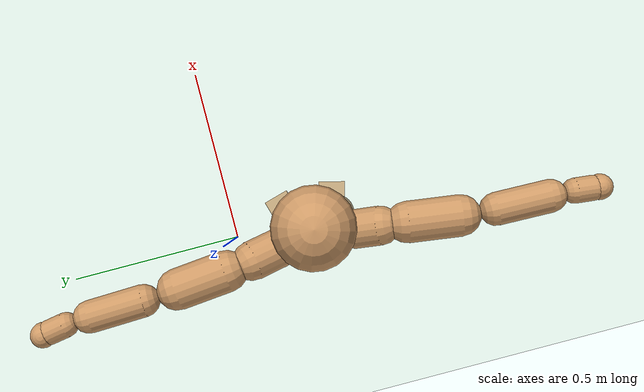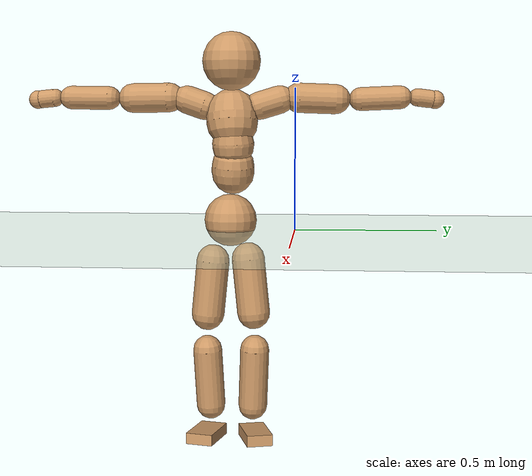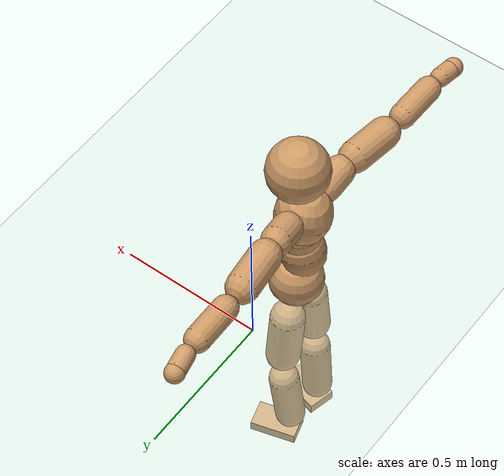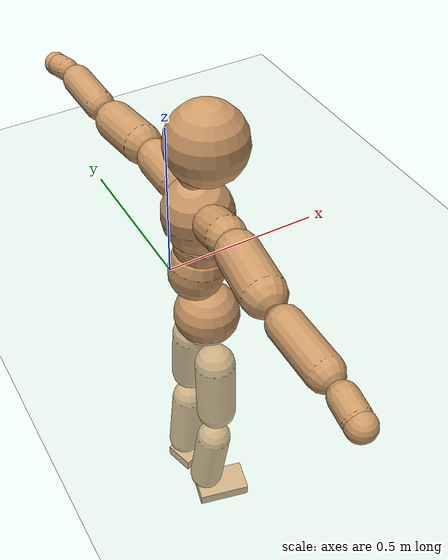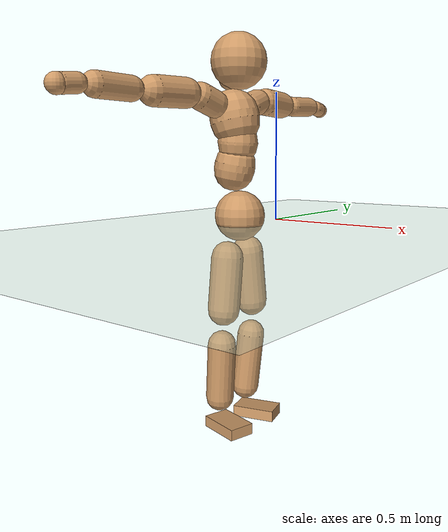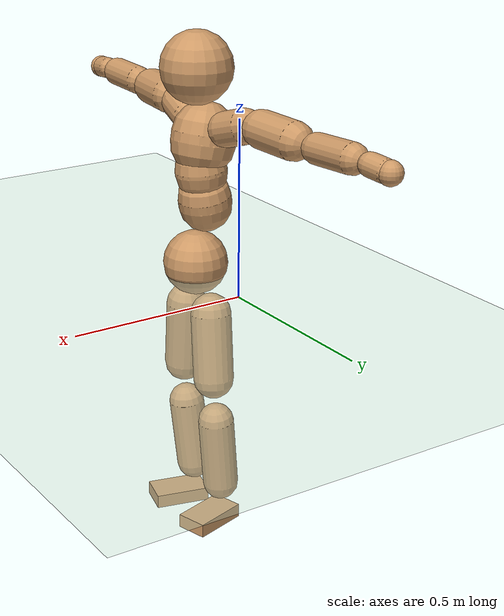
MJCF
<mujoco model="humanoid">
  <compiler coordinate="local"/>
  <default>
    <joint damping="0.0" armature="0.01" stiffness="0.0" limited="true"/>
    <geom conaffinity="1" condim="3" contype="7" margin="0.001" rgba="0.8 0.6 .4 1"/>
  </default>
  <asset>
    <texture type="skybox" builtin="gradient" rgb1=".4 .5 .6" rgb2="0 0 0" width="100" height="100"/>
    <texture builtin="flat" height="1278" mark="cross" markrgb="1 1 1" name="texgeom" random="0.01" rgb1="0.8 0.6 0.4" rgb2="0.8 0.6 0.4" type="cube" width="127"/>
    <texture builtin="checker" height="100" name="texplane" rgb1="0 0 0" rgb2="0.8 0.8 0.8" type="2d" width="100"/>
    <material name="MatPlane" reflectance="0.5" shininess="1" specular="1" texrepeat="60 60" texture="texplane"/>
    <material name="geom" texture="texgeom" texuniform="true"/>
  </asset>
  <worldbody>
    <light cutoff="100" diffuse="1 1 1" dir="-0 0 -1.3" directional="true" exponent="1" pos="0 0 1.3" specular=".1 .1 .1"/>
    <geom conaffinity="1" condim="3" name="floor" pos="0 0 0" rgba="0.8 0.9 0.8 1" size="100 100 .2" type="plane" material="MatPlane"/>
    <body name="Pelvis" pos="-0.0031 -0.2293 0.0331">
      <freejoint name="Pelvis"/>
      <geom type="sphere" contype="1" conaffinity="1" density="500" size="0.0932" pos="0.0000 0.0000 0.0000" name="Pelvis"/>
      <body name="L_Hip" pos="-0.013 0.0557 -0.0758">
        <joint name="L_Hip_x" type="hinge" pos="0 0 0" axis="1 0 0" stiffness="800" damping="80" armature="0.02" range="-180.0000 180.0000"/>
        <joint name="L_Hip_y" type="hinge" pos="0 0 0" axis="0 1 0" stiffness="800" damping="80" armature="0.02" range="-180.0000 180.0000"/>
        <joint name="L_Hip_z" type="hinge" pos="0 0 0" axis="0 0 1" stiffness="800" damping="80" armature="0.02" range="-180.0000 180.0000"/>
        <geom type="capsule" contype="1" conaffinity="1" density="500" fromto="0.0013 0.0066 -0.0654 0.0053 0.0265 -0.2614" size="0.059" name="L_Hip"/>
        <body name="L_Knee" pos="0.0066 0.0331 -0.3268">
          <joint name="L_Knee_x" type="hinge" pos="0 0 0" axis="1 0 0" stiffness="800" damping="80" armature="0.02" range="-180.0000 180.0000"/>
          <joint name="L_Knee_y" type="hinge" pos="0 0 0" axis="0 1 0" stiffness="800" damping="80" armature="0.02" range="-180.0000 180.0000"/>
          <joint name="L_Knee_z" type="hinge" pos="0 0 0" axis="0 0 1" stiffness="800" damping="80" armature="0.02" range="-180.0000 180.0000"/>
          <geom type="capsule" contype="1" conaffinity="1" density="500" fromto="-0.0071 -0.0028 -0.0714 -0.0284 -0.0111 -0.2854" size="0.0521" name="L_Knee"/>
          <body name="L_Ankle" pos="-0.0355 -0.0139 -0.3568">
            <joint name="L_Ankle_x" type="hinge" pos="0 0 0" axis="1 0 0" stiffness="800" damping="80" armature="0.02" range="-180.0000 180.0000"/>
            <joint name="L_Ankle_y" type="hinge" pos="0 0 0" axis="0 1 0" stiffness="800" damping="80" armature="0.02" range="-180.0000 180.0000"/>
            <joint name="L_Ankle_z" type="hinge" pos="0 0 0" axis="0 0 1" stiffness="800" damping="80" armature="0.02" range="-180.0000 180.0000"/>
            <geom type="box" contype="1" conaffinity="1" density="500" pos="0.0551 0.0156 -0.0256" size="0.0811 0.0465 0.0204" quat="0.9906 0.0000 0.0000 0.1371" name="L_Ankle"/>
            <body name="L_Toe" pos="0.1102 0.0311 -0.0512">
              <joint name="L_Toe_x" type="hinge" pos="0 0 0" axis="1 0 0" stiffness="500" damping="50" armature="0.02" range="-180.0000 180.0000"/>
              <joint name="L_Toe_y" type="hinge" pos="0 0 0" axis="0 1 0" stiffness="500" damping="50" armature="0.02" range="-180.0000 180.0000"/>
              <joint name="L_Toe_z" type="hinge" pos="0 0 0" axis="0 0 1" stiffness="500" damping="50" armature="0.02" range="-180.0000 180.0000"/>
              <geom type="box" contype="1" conaffinity="1" density="500" pos="0.0000 0.0000 0.0247" size="0.001 0.0023 0.001" quat="0.9897 0.0000 0.0000 0.1430" name="L_Toe"/>
            </body>
          </body>
        </body>
      </body>
      <body name="R_Hip" pos="-0.0072 -0.0581 -0.0842">
        <joint name="R_Hip_x" type="hinge" pos="0 0 0" axis="1 0 0" stiffness="800" damping="80" armature="0.02" range="-180.0000 180.0000"/>
        <joint name="R_Hip_y" type="hinge" pos="0 0 0" axis="0 1 0" stiffness="800" damping="80" armature="0.02" range="-180.0000 180.0000"/>
        <joint name="R_Hip_z" type="hinge" pos="0 0 0" axis="0 0 1" stiffness="800" damping="80" armature="0.02" range="-180.0000 180.0000"/>
        <geom type="capsule" contype="1" conaffinity="1" density="500" fromto="-0.0009 -0.0064 -0.0649 -0.0035 -0.0255 -0.2598" size="0.0587" name="R_Hip"/>
        <body name="R_Knee" pos="-0.0043 -0.0318 -0.3247">
          <joint name="R_Knee_x" type="hinge" pos="0 0 0" axis="1 0 0" stiffness="800" damping="80" armature="0.02" range="-180.0000 180.0000"/>
          <joint name="R_Knee_y" type="hinge" pos="0 0 0" axis="0 1 0" stiffness="800" damping="80" armature="0.02" range="-180.0000 180.0000"/>
          <joint name="R_Knee_z" type="hinge" pos="0 0 0" axis="0 0 1" stiffness="800" damping="80" armature="0.02" range="-180.0000 180.0000"/>
          <geom type="capsule" contype="1" conaffinity="1" density="500" fromto="-0.0066 0.0033 -0.0699 -0.0262 0.0132 -0.2797" size="0.0524" name="R_Knee"/>
          <body name="R_Ankle" pos="-0.0328 0.0165 -0.3496">
            <joint name="R_Ankle_x" type="hinge" pos="0 0 0" axis="1 0 0" stiffness="800" damping="80" armature="0.02" range="-180.0000 180.0000"/>
            <joint name="R_Ankle_y" type="hinge" pos="0 0 0" axis="0 1 0" stiffness="800" damping="80" armature="0.02" range="-180.0000 180.0000"/>
            <joint name="R_Ankle_z" type="hinge" pos="0 0 0" axis="0 0 1" stiffness="800" damping="80" armature="0.02" range="-180.0000 180.0000"/>
            <geom type="box" contype="1" conaffinity="1" density="500" pos="0.0583 -0.0143 -0.0262" size="0.0813 0.0486 0.02" quat="0.9928 0.0000 0.0000 -0.1199" name="R_Ankle"/>
            <body name="R_Toe" pos="0.1167 -0.0286 -0.0524">
              <joint name="R_Toe_x" type="hinge" pos="0 0 0" axis="1 0 0" stiffness="500" damping="50" armature="0.02" range="-180.0000 180.0000"/>
              <joint name="R_Toe_y" type="hinge" pos="0 0 0" axis="0 1 0" stiffness="500" damping="50" armature="0.02" range="-180.0000 180.0000"/>
              <joint name="R_Toe_z" type="hinge" pos="0 0 0" axis="0 0 1" stiffness="500" damping="50" armature="0.02" range="-180.0000 180.0000"/>
              <geom type="box" contype="1" conaffinity="1" density="500" pos="0.0000 0.0000 0.0268" size="0.001 0.0024 0.001" quat="0.9939 0.0000 0.0000 -0.1101" name="R_Toe"/>
            </body>
          </body>
        </body>
      </body>
      <body name="Torso" pos="-0.0397 0.004 0.1163">
        <joint name="Torso_x" type="hinge" pos="0 0 0" axis="1 0 0" stiffness="1000" damping="100" armature="0.02" range="-180.0000 180.0000"/>
        <joint name="Torso_y" type="hinge" pos="0 0 0" axis="0 1 0" stiffness="1000" damping="100" armature="0.02" range="-180.0000 180.0000"/>
        <joint name="Torso_z" type="hinge" pos="0 0 0" axis="0 0 1" stiffness="1000" damping="100" armature="0.02" range="-180.0000 180.0000"/>
        <geom type="capsule" contype="1" conaffinity="1" density="500" fromto="0.0134 0.0029 0.0761 0.0089 0.0019 0.0507" size="0.075981" name="Torso"/>
        <body name="Spine" pos="0.0224 0.0048 0.1268">
          <joint name="Spine_x" type="hinge" pos="0 0 0" axis="1 0 0" stiffness="1000" damping="100" armature="0.02" range="-180.0000 180.0000"/>
          <joint name="Spine_y" type="hinge" pos="0 0 0" axis="0 1 0" stiffness="1000" damping="100" armature="0.02" range="-180.0000 180.0000"/>
          <joint name="Spine_z" type="hinge" pos="0 0 0" axis="0 0 1" stiffness="1000" damping="100" armature="0.02" range="-180.0000 180.0000"/>
          <geom type="capsule" contype="1" conaffinity="1" density="500" fromto="0.0026 -0.0009 0.0306 0.0017 -0.0006 0.0204" size="0.0744" name="Spine"/>
          <body name="Chest" pos="0.0043 -0.0015 0.0511">
            <joint name="Chest_x" type="hinge" pos="0 0 0" axis="1 0 0" stiffness="1000" damping="100" armature="0.02" range="-180.0000 180.0000"/>
            <joint name="Chest_y" type="hinge" pos="0 0 0" axis="0 1 0" stiffness="1000" damping="100" armature="0.02" range="-180.0000 180.0000"/>
            <joint name="Chest_z" type="hinge" pos="0 0 0" axis="0 0 1" stiffness="1000" damping="100" armature="0.02" range="-180.0000 180.0000"/>
            <geom type="capsule" contype="1" conaffinity="1" density="500" fromto="-0.0164 -0.0050 0.0792 -0.0109 -0.0034 0.0528" size="0.09207" name="Chest"/>
            <body name="Neck" pos="-0.0377 -0.0136 0.1903">
              <joint name="Neck_x" type="hinge" pos="0 0 0" axis="1 0 0" stiffness="500" damping="50" armature="0.02" range="-180.0000 180.0000"/>
              <joint name="Neck_y" type="hinge" pos="0 0 0" axis="0 1 0" stiffness="500" damping="50" armature="0.02" range="-180.0000 180.0000"/>
              <joint name="Neck_z" type="hinge" pos="0 0 0" axis="0 0 1" stiffness="500" damping="50" armature="0.02" range="-180.0000 180.0000"/>
              <geom type="capsule" contype="1" conaffinity="1" density="500" fromto="0.0090 0.0019 0.0155 0.0361 0.0077 0.0619" size="0.041199" name="Neck"/>
              <body name="Head" pos="0.0451 0.0096 0.0773">
                <joint name="Head_x" type="hinge" pos="0 0 0" axis="1 0 0" stiffness="500" damping="50" armature="0.02" range="-180.0000 180.0000"/>
                <joint name="Head_y" type="hinge" pos="0 0 0" axis="0 1 0" stiffness="500" damping="50" armature="0.02" range="-180.0000 180.0000"/>
                <joint name="Head_z" type="hinge" pos="0 0 0" axis="0 0 1" stiffness="500" damping="50" armature="0.02" range="-180.0000 180.0000"/>
                <geom type="sphere" contype="1" conaffinity="1" density="500" size="0.1032" pos="0.0000 0.0000 0.0000" name="Head"/>
              </body>
            </body>
            <body name="L_Thorax" pos="-0.0198 0.0678 0.1033">
              <joint name="L_Thorax_x" type="hinge" pos="0 0 0" axis="1 0 0" stiffness="500" damping="50" armature="0.02" range="-180.0000 180.0000"/>
              <joint name="L_Thorax_y" type="hinge" pos="0 0 0" axis="0 1 0" stiffness="500" damping="50" armature="0.02" range="-180.0000 180.0000"/>
              <joint name="L_Thorax_z" type="hinge" pos="0 0 0" axis="0 0 1" stiffness="500" damping="50" armature="0.02" range="-180.0000 180.0000"/>
              <geom type="capsule" contype="1" conaffinity="1" density="500" fromto="-0.0044 0.0243 0.0075 -0.0175 0.0971 0.0298" size="0.0502" name="L_Thorax"/>
              <body name="L_Shoulder" pos="-0.0218 0.1213 0.0373">
                <joint name="L_Shoulder_x" type="hinge" pos="0 0 0" axis="1 0 0" stiffness="500" damping="50" armature="0.02" range="-720.0000 720.0000"/>
                <joint name="L_Shoulder_y" type="hinge" pos="0 0 0" axis="0 1 0" stiffness="500" damping="50" armature="0.02" range="-720.0000 720.0000"/>
                <joint name="L_Shoulder_z" type="hinge" pos="0 0 0" axis="0 0 1" stiffness="500" damping="50" armature="0.02" range="-720.0000 720.0000"/>
                <geom type="capsule" contype="1" conaffinity="1" density="500" fromto="-0.0043 0.0433 -0.0016 -0.0170 0.1731 -0.0064" size="0.0531" name="L_Shoulder"/>
                <body name="L_Elbow" pos="-0.0213 0.2163 -0.008">
                  <joint name="L_Elbow_x" type="hinge" pos="0 0 0" axis="1 0 0" stiffness="500" damping="50" armature="0.02" range="-720.0000 720.0000"/>
                  <joint name="L_Elbow_y" type="hinge" pos="0 0 0" axis="0 1 0" stiffness="500" damping="50" armature="0.02" range="-720.0000 720.0000"/>
                  <joint name="L_Elbow_z" type="hinge" pos="0 0 0" axis="0 0 1" stiffness="500" damping="50" armature="0.02" range="-720.0000 720.0000"/>
                  <geom type="capsule" contype="1" conaffinity="1" density="500" fromto="-0.0014 0.0463 0.0019 -0.0057 0.1852 0.0078" size="0.0415" name="L_Elbow"/>
                  <body name="L_Wrist" pos="-0.0071 0.2316 0.0097">
                    <joint name="L_Wrist_x" type="hinge" pos="0 0 0" axis="1 0 0" stiffness="300" damping="30" armature="0.02" range="-180.0000 180.0000"/>
                    <joint name="L_Wrist_y" type="hinge" pos="0 0 0" axis="0 1 0" stiffness="300" damping="30" armature="0.02" range="-180.0000 180.0000"/>
                    <joint name="L_Wrist_z" type="hinge" pos="0 0 0" axis="0 0 1" stiffness="300" damping="30" armature="0.02" range="-180.0000 180.0000"/>
                    <geom type="capsule" contype="1" conaffinity="1" density="500" fromto="-0.0028 0.0158 -0.0020 -0.0110 0.0632 -0.0078" size="0.0317" name="L_Wrist"/>
                    <body name="L_Hand" pos="-0.0138 0.079 -0.0098">
                      <joint name="L_Hand_x" type="hinge" pos="0 0 0" axis="1 0 0" stiffness="300" damping="30" armature="0.02" range="-180.0000 180.0000"/>
                      <joint name="L_Hand_y" type="hinge" pos="0 0 0" axis="0 1 0" stiffness="300" damping="30" armature="0.02" range="-180.0000 180.0000"/>
                      <joint name="L_Hand_z" type="hinge" pos="0 0 0" axis="0 0 1" stiffness="300" damping="30" armature="0.02" range="-180.0000 180.0000"/>
                      <geom type="sphere" contype="1" conaffinity="1" density="500" size="0.0326" pos="0.0000 0.0000 0.0000" name="L_Hand"/>
                    </body>
                  </body>
                </body>
              </body>
            </body>
            <body name="R_Thorax" pos="-0.0244 -0.0794 0.1025">
              <joint name="R_Thorax_x" type="hinge" pos="0 0 0" axis="1 0 0" stiffness="500" damping="50" armature="0.02" range="-180.0000 180.0000"/>
              <joint name="R_Thorax_y" type="hinge" pos="0 0 0" axis="0 1 0" stiffness="500" damping="50" armature="0.02" range="-180.0000 180.0000"/>
              <joint name="R_Thorax_z" type="hinge" pos="0 0 0" axis="0 0 1" stiffness="500" damping="50" armature="0.02" range="-180.0000 180.0000"/>
              <geom type="capsule" contype="1" conaffinity="1" density="500" fromto="-0.0023 -0.0219 0.0076 -0.0091 -0.0876 0.0303" size="0.0499" name="R_Thorax"/>
              <body name="R_Shoulder" pos="-0.0114 -0.1095 0.0379">
                <joint name="R_Shoulder_x" type="hinge" pos="0 0 0" axis="1 0 0" stiffness="500" damping="50" armature="0.02" range="-720.0000 720.0000"/>
                <joint name="R_Shoulder_y" type="hinge" pos="0 0 0" axis="0 1 0" stiffness="500" damping="50" armature="0.02" range="-720.0000 720.0000"/>
                <joint name="R_Shoulder_z" type="hinge" pos="0 0 0" axis="0 0 1" stiffness="500" damping="50" armature="0.02" range="-720.0000 720.0000"/>
                <geom type="capsule" contype="1" conaffinity="1" density="500" fromto="-0.0060 -0.0442 -0.0006 -0.0240 -0.1770 -0.0023" size="0.053" name="R_Shoulder"/>
                <body name="R_Elbow" pos="-0.03 -0.2212 -0.0028">
                  <joint name="R_Elbow_x" type="hinge" pos="0 0 0" axis="1 0 0" stiffness="500" damping="50" armature="0.02" range="-720.0000 720.0000"/>
                  <joint name="R_Elbow_y" type="hinge" pos="0 0 0" axis="0 1 0" stiffness="500" damping="50" armature="0.02" range="-720.0000 720.0000"/>
                  <joint name="R_Elbow_z" type="hinge" pos="0 0 0" axis="0 0 1" stiffness="500" damping="50" armature="0.02" range="-720.0000 720.0000"/>
                  <geom type="capsule" contype="1" conaffinity="1" density="500" fromto="-0.0010 -0.0463 0.0006 -0.0040 -0.1851 0.0024" size="0.0421" name="R_Elbow"/>
                  <body name="R_Wrist" pos="-0.0051 -0.2314 0.0029">
                    <joint name="R_Wrist_x" type="hinge" pos="0 0 0" axis="1 0 0" stiffness="300" damping="30" armature="0.02" range="-180.0000 180.0000"/>
                    <joint name="R_Wrist_y" type="hinge" pos="0 0 0" axis="0 1 0" stiffness="300" damping="30" armature="0.02" range="-180.0000 180.0000"/>
                    <joint name="R_Wrist_z" type="hinge" pos="0 0 0" axis="0 0 1" stiffness="300" damping="30" armature="0.02" range="-180.0000 180.0000"/>
                    <geom type="capsule" contype="1" conaffinity="1" density="500" fromto="-0.0018 -0.0162 -0.0016 -0.0071 -0.0646 -0.0064" size="0.0324" name="R_Wrist"/>
                    <body name="R_Hand" pos="-0.0089 -0.0808 -0.008">
                      <joint name="R_Hand_x" type="hinge" pos="0 0 0" axis="1 0 0" stiffness="300" damping="30" armature="0.02" range="-180.0000 180.0000"/>
                      <joint name="R_Hand_y" type="hinge" pos="0 0 0" axis="0 1 0" stiffness="300" damping="30" armature="0.02" range="-180.0000 180.0000"/>
                      <joint name="R_Hand_z" type="hinge" pos="0 0 0" axis="0 0 1" stiffness="300" damping="30" armature="0.02" range="-180.0000 180.0000"/>
                      <geom type="sphere" contype="1" conaffinity="1" density="500" size="0.0331" pos="0.0000 0.0000 0.0000" name="R_Hand"/>
                    </body>
                  </body>
                </body>
              </body>
            </body>
          </body>
        </body>
      </body>
    </body>
  </worldbody>
  <actuator>
    <motor name="L_Hip_x" joint="L_Hip_x" gear="500"/>
    <motor name="L_Hip_y" joint="L_Hip_y" gear="500"/>
    <motor name="L_Hip_z" joint="L_Hip_z" gear="500"/>
    <motor name="L_Knee_x" joint="L_Knee_x" gear="500"/>
    <motor name="L_Knee_y" joint="L_Knee_y" gear="500"/>
    <motor name="L_Knee_z" joint="L_Knee_z" gear="500"/>
    <motor name="L_Ankle_x" joint="L_Ankle_x" gear="500"/>
    <motor name="L_Ankle_y" joint="L_Ankle_y" gear="500"/>
    <motor name="L_Ankle_z" joint="L_Ankle_z" gear="500"/>
    <motor name="L_Toe_x" joint="L_Toe_x" gear="500"/>
    <motor name="L_Toe_y" joint="L_Toe_y" gear="500"/>
    <motor name="L_Toe_z" joint="L_Toe_z" gear="500"/>
    <motor name="R_Hip_x" joint="R_Hip_x" gear="500"/>
    <motor name="R_Hip_y" joint="R_Hip_y" gear="500"/>
    <motor name="R_Hip_z" joint="R_Hip_z" gear="500"/>
    <motor name="R_Knee_x" joint="R_Knee_x" gear="500"/>
    <motor name="R_Knee_y" joint="R_Knee_y" gear="500"/>
    <motor name="R_Knee_z" joint="R_Knee_z" gear="500"/>
    <motor name="R_Ankle_x" joint="R_Ankle_x" gear="500"/>
    <motor name="R_Ankle_y" joint="R_Ankle_y" gear="500"/>
    <motor name="R_Ankle_z" joint="R_Ankle_z" gear="500"/>
    <motor name="R_Toe_x" joint="R_Toe_x" gear="500"/>
    <motor name="R_Toe_y" joint="R_Toe_y" gear="500"/>
    <motor name="R_Toe_z" joint="R_Toe_z" gear="500"/>
    <motor name="Torso_x" joint="Torso_x" gear="500"/>
    <motor name="Torso_y" joint="Torso_y" gear="500"/>
    <motor name="Torso_z" joint="Torso_z" gear="500"/>
    <motor name="Spine_x" joint="Spine_x" gear="500"/>
    <motor name="Spine_y" joint="Spine_y" gear="500"/>
    <motor name="Spine_z" joint="Spine_z" gear="500"/>
    <motor name="Chest_x" joint="Chest_x" gear="500"/>
    <motor name="Chest_y" joint="Chest_y" gear="500"/>
    <motor name="Chest_z" joint="Chest_z" gear="500"/>
    <motor name="Neck_x" joint="Neck_x" gear="500"/>
    <motor name="Neck_y" joint="Neck_y" gear="500"/>
    <motor name="Neck_z" joint="Neck_z" gear="500"/>
    <motor name="Head_x" joint="Head_x" gear="500"/>
    <motor name="Head_y" joint="Head_y" gear="500"/>
    <motor name="Head_z" joint="Head_z" gear="500"/>
    <motor name="L_Thorax_x" joint="L_Thorax_x" gear="500"/>
    <motor name="L_Thorax_y" joint="L_Thorax_y" gear="500"/>
    <motor name="L_Thorax_z" joint="L_Thorax_z" gear="500"/>
    <motor name="L_Shoulder_x" joint="L_Shoulder_x" gear="500"/>
    <motor name="L_Shoulder_y" joint="L_Shoulder_y" gear="500"/>
    <motor name="L_Shoulder_z" joint="L_Shoulder_z" gear="500"/>
    <motor name="L_Elbow_x" joint="L_Elbow_x" gear="500"/>
    <motor name="L_Elbow_y" joint="L_Elbow_y" gear="500"/>
    <motor name="L_Elbow_z" joint="L_Elbow_z" gear="500"/>
    <motor name="L_Wrist_x" joint="L_Wrist_x" gear="500"/>
    <motor name="L_Wrist_y" joint="L_Wrist_y" gear="500"/>
    <motor name="L_Wrist_z" joint="L_Wrist_z" gear="500"/>
    <motor name="L_Hand_x" joint="L_Hand_x" gear="500"/>
    <motor name="L_Hand_y" joint="L_Hand_y" gear="500"/>
    <motor name="L_Hand_z" joint="L_Hand_z" gear="500"/>
    <motor name="R_Thorax_x" joint="R_Thorax_x" gear="500"/>
    <motor name="R_Thorax_y" joint="R_Thorax_y" gear="500"/>
    <motor name="R_Thorax_z" joint="R_Thorax_z" gear="500"/>
    <motor name="R_Shoulder_x" joint="R_Shoulder_x" gear="500"/>
    <motor name="R_Shoulder_y" joint="R_Shoulder_y" gear="500"/>
    <motor name="R_Shoulder_z" joint="R_Shoulder_z" gear="500"/>
    <motor name="R_Elbow_x" joint="R_Elbow_x" gear="500"/>
    <motor name="R_Elbow_y" joint="R_Elbow_y" gear="500"/>
    <motor name="R_Elbow_z" joint="R_Elbow_z" gear="500"/>
    <motor name="R_Wrist_x" joint="R_Wrist_x" gear="500"/>
    <motor name="R_Wrist_y" joint="R_Wrist_y" gear="500"/>
    <motor name="R_Wrist_z" joint="R_Wrist_z" gear="500"/>
    <motor name="R_Hand_x" joint="R_Hand_x" gear="500"/>
    <motor name="R_Hand_y" joint="R_Hand_y" gear="500"/>
    <motor name="R_Hand_z" joint="R_Hand_z" gear="500"/>
  </actuator>
  <contact>
    <exclude body1="Torso" body2="Chest"/>
    <exclude body1="Head" body2="Chest"/>
    <exclude body1="R_Knee" body2="R_Toe"/>
    <exclude body1="R_Knee" body2="L_Ankle"/>
    <exclude body1="R_Knee" body2="L_Toe"/>
    <exclude body1="L_Knee" body2="L_Toe"/>
    <exclude body1="L_Knee" body2="R_Ankle"/>
    <exclude body1="L_Knee" body2="R_Toe"/>
    <exclude body1="L_Shoulder" body2="Chest"/>
    <exclude body1="R_Shoulder" body2="Chest"/>
  </contact>
  <sensor/>
  <size njmax="700" nconmax="700"/>
</mujoco>
